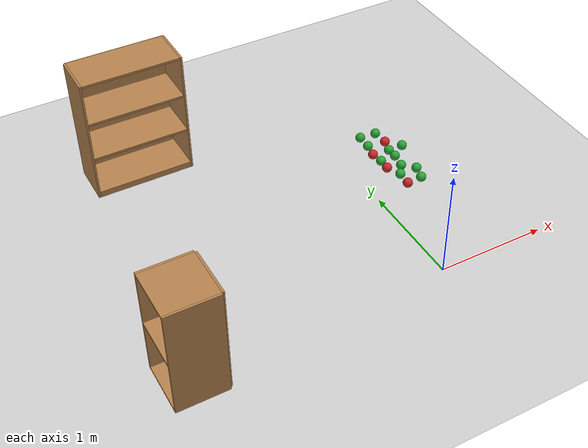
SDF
<sdf version="1.6">
 <world name="default">
  <model name="ground_plane">
   <static>1</static>
   <link name="link">
    <collision name="collision">
     <geometry><plane><normal>0 0 1</normal><size>100 100</size></plane></geometry>
     <surface><friction><ode><mu>100</mu><mu2>50</mu2></ode></friction></surface>
    </collision>
    <visual name="visual">
     <cast_shadows>0</cast_shadows>
     <geometry><plane><normal>0 0 1</normal><size>100 100</size></plane></geometry>
     <material>
      <script><uri>file://media/materials/scripts/gazebo.material</uri><name>Gazebo/Grey</name></script>
     </material>
    </visual>
   </link>
  </model>
  <model name="cabinet">
   <static>1</static>
   <link name="cabinet_bottom_plate">
    <inertial>
     <pose>0 0 -1 0 -0 0</pose>
     <inertia><ixx>2.05</ixx><ixy>0</ixy><ixz>0</ixz><iyy>2.05</iyy><iyz>0</iyz><izz>2.05</izz></inertia>
     <mass>25</mass>
    </inertial>
    <collision name="cabinet_bottom_plate_geom">
     <pose>0 0 0.01 0 -0 0</pose>
     <geometry><box><size>0.45 0.45 0.02</size></box></geometry>
    </collision>
    <visual name="cabinet_bottom_plate_geom_visual">
     <pose>0 0 0.01 0 -0 0</pose>
     <geometry><box><size>0.45 0.45 0.02</size></box></geometry>
     <material>
      <script><uri>file://media/materials/scripts/gazebo.material</uri><name>Gazebo/Wood</name></script>
     </material>
    </visual>
    <collision name="cabinet_bottom_plate_geom_cabinet_back_plate">
     <pose>0.235 0 0.51 0 -0 0</pose>
     <geometry><box><size>0.02 0.45 1.02</size></box></geometry>
    </collision>
    <visual name="cabinet_bottom_plate_geom_cabinet_back_plate_visual">
     <pose>0.235 0 0.51 0 -0 0</pose>
     <geometry><box><size>0.02 0.45 1.02</size></box></geometry>
     <material>
      <script><uri>file://media/materials/scripts/gazebo.material</uri><name>Gazebo/Wood</name></script>
     </material>
    </visual>
    <collision name="cabinet_bottom_plate_geom_cabinet_left_plate">
     <pose>0 0.235 0.51 0 -0 0</pose>
     <geometry><box><size>0.45 0.02 1.02</size></box></geometry>
    </collision>
    <visual name="cabinet_bottom_plate_geom_cabinet_left_plate_visual">
     <pose>0 0.235 0.51 0 -0 0</pose>
     <geometry><box><size>0.45 0.02 1.02</size></box></geometry>
     <material>
      <script><uri>file://media/materials/scripts/gazebo.material</uri><name>Gazebo/Wood</name></script>
     </material>
    </visual>
    <collision name="cabinet_bottom_plate_geom_cabinet_middle_plate">
     <pose>0 0 0.51 0 -0 0</pose>
     <geometry><box><size>0.45 0.45 0.02</size></box></geometry>
    </collision>
    <visual name="cabinet_bottom_plate_geom_cabinet_middle_plate_visual">
     <pose>0 0 0.51 0 -0 0</pose>
     <geometry><box><size>0.45 0.45 0.02</size></box></geometry>
     <material>
      <script><uri>file://media/materials/scripts/gazebo.material</uri><name>Gazebo/Wood</name></script>
     </material>
    </visual>
    <collision name="cabinet_bottom_plate_geom_cabinet_right_plate">
     <pose>0 -0.235 0.51 0 -0 0</pose>
     <geometry><box><size>0.45 0.02 1.02</size></box></geometry>
    </collision>
    <visual name="cabinet_bottom_plate_geom_cabinet_right_plate_visual">
     <pose>0 -0.235 0.51 0 -0 0</pose>
     <geometry><box><size>0.45 0.02 1.02</size></box></geometry>
     <material>
      <script><uri>file://media/materials/scripts/gazebo.material</uri><name>Gazebo/Wood</name></script>
     </material>
    </visual>
    <collision name="cabinet_bottom_plate_geom_cabinet_top_plate">
     <pose>0 0 1.01 0 -0 0</pose>
     <geometry><box><size>0.45 0.45 0.02</size></box></geometry>
    </collision>
    <visual name="cabinet_bottom_plate_geom_cabinet_top_plate_visual">
     <pose>0 0 1.01 0 -0 0</pose>
     <geometry><box><size>0.45 0.45 0.02</size></box></geometry>
     <material>
      <script><uri>file://media/materials/scripts/gazebo.material</uri><name>Gazebo/Wood</name></script>
     </material>
    </visual>
   </link>
   <pose>-2.29685 -0.011015 0 0 -0 0</pose>
  </model>
  <model name="bookshelf">
   <static>1</static>
   <link name="link">
    <inertial><mass>1</mass></inertial>
    <collision name="back">
     <pose>0 0.005 0.6 0 -0 0</pose>
     <geometry><box><size>0.9 0.01 1.2</size></box></geometry>
    </collision>
    <visual name="visual1">
     <pose>0 0.005 0.6 0 -0 0</pose>
     <geometry><box><size>0.9 0.01 1.2</size></box></geometry>
     <material>
      <script><uri>file://media/materials/scripts/gazebo.material</uri><name>Gazebo/Wood</name></script>
     </material>
    </visual>
    <collision name="left_side">
     <pose>0.45 -0.195 0.6 0 -0 0</pose>
     <geometry><box><size>0.02 0.4 1.2</size></box></geometry>
    </collision>
    <visual name="visual2">
     <pose>0.45 -0.195 0.6 0 -0 0</pose>
     <geometry><box><size>0.02 0.4 1.2</size></box></geometry>
     <material>
      <script><uri>file://media/materials/scripts/gazebo.material</uri><name>Gazebo/Wood</name></script>
     </material>
    </visual>
    <collision name="right_side">
     <pose>-0.45 -0.195 0.6 0 -0 0</pose>
     <geometry><box><size>0.02 0.4 1.2</size></box></geometry>
    </collision>
    <visual name="visual3">
     <pose>-0.45 -0.195 0.6 0 -0 0</pose>
     <geometry><box><size>0.02 0.4 1.2</size></box></geometry>
     <material>
      <script><uri>file://media/materials/scripts/gazebo.material</uri><name>Gazebo/Wood</name></script>
     </material>
    </visual>
    <collision name="bottom">
     <pose>0 -0.195 0.03 0 -0 0</pose>
     <geometry><box><size>0.88 0.4 0.06</size></box></geometry>
    </collision>
    <visual name="visual4">
     <pose>0 -0.195 0.03 0 -0 0</pose>
     <geometry><box><size>0.88 0.4 0.06</size></box></geometry>
     <material>
      <script><uri>file://media/materials/scripts/gazebo.material</uri><name>Gazebo/Wood</name></script>
     </material>
    </visual>
    <collision name="top">
     <pose>0 -0.195 1.19 0 -0 0</pose>
     <geometry><box><size>0.88 0.4 0.02</size></box></geometry>
    </collision>
    <visual name="visual5">
     <pose>0 -0.195 1.19 0 -0 0</pose>
     <geometry><box><size>0.88 0.4 0.02</size></box></geometry>
     <material>
      <script><uri>file://media/materials/scripts/gazebo.material</uri><name>Gazebo/Wood</name></script>
     </material>
    </visual>
    <collision name="low_shelf">
     <pose>0 -0.195 0.43 0 -0 0</pose>
     <geometry><box><size>0.88 0.4 0.02</size></box></geometry>
    </collision>
    <visual name="visual6">
     <pose>0 -0.195 0.43 0 -0 0</pose>
     <geometry><box><size>0.88 0.4 0.02</size></box></geometry>
     <material>
      <script><uri>file://media/materials/scripts/gazebo.material</uri><name>Gazebo/Wood</name></script>
     </material>
    </visual>
    <collision name="high_shelf">
     <pose>0 -0.195 0.8 0 -0 0</pose>
     <geometry><box><size>0.88 0.4 0.02</size></box></geometry>
    </collision>
    <visual name="visual7">
     <pose>0 -0.195 0.8 0 -0 0</pose>
     <geometry><box><size>0.88 0.4 0.02</size></box></geometry>
     <material>
      <script><uri>file://media/materials/scripts/gazebo.material</uri><name>Gazebo/Wood</name></script>
     </material>
    </visual>
   </link>
   <pose>-1.70945 2.65382 0 0 -0 0</pose>
  </model>
  <model name="green_apple_clone_2">
   <link name="link">
    <inertial>
     <mass>1</mass>
     <inertia><ixx>0.1</ixx><ixy>0</ixy><ixz>0</ixz><iyy>0.1</iyy><iyz>0</iyz><izz>0.1</izz></inertia>
    </inertial>
    <visual name="visual">
     <geometry><sphere><radius>0.04</radius></sphere></geometry>
     <material>
      <script><name>Gazebo/Green</name><uri>file://media/materials/scripts/gazebo.material</uri></script>
      <shader type="vertex"><normal_map>__default__</normal_map></shader>
      <ambient>0 1 0 1</ambient>
      <diffuse>0.7 0.7 0.7 1</diffuse>
      <specular>0.01 0.01 0.01 1</specular>
      <emissive>0 0 0 1</emissive>
     </material>
    </visual>
    <collision name="collision">
     <geometry><sphere><radius>0.04</radius></sphere></geometry>
     <surface>
      <friction>
       <ode><mu>1</mu><mu2>1</mu2><fdir1>0 0 0</fdir1><slip1>0</slip1><slip2>0</slip2></ode>
       <torsional>
        <coefficient>1</coefficient>
        <patch_radius>0</patch_radius>
        <surface_radius>0</surface_radius>
        <use_patch_radius>1</use_patch_radius>
        <ode><slip>0</slip></ode>
       </torsional>
      </friction>
      <bounce><restitution_coefficient>0</restitution_coefficient><threshold>1e+06</threshold></bounce>
      <contact>
       <collide_without_contact>0</collide_without_contact>
       <collide_without_contact_bitmask>1</collide_without_contact_bitmask>
       <collide_bitmask>1</collide_bitmask>
       <ode>
        <soft_cfm>0</soft_cfm>
        <soft_erp>0.2</soft_erp>
        <kp>1e+13</kp>
        <kd>1</kd>
        <max_vel>0.01</max_vel>
        <min_depth>0</min_depth>
       </ode>
       <bullet>
        <split_impulse>1</split_impulse>
        <split_impulse_penetration_threshold>-0.01</split_impulse_penetration_threshold>
        <soft_cfm>0</soft_cfm>
        <soft_erp>0.2</soft_erp>
        <kp>1e+13</kp>
        <kd>1</kd>
       </bullet>
      </contact>
     </surface>
    </collision>
   </link>
   <static>0</static>
   <pose>-0.233826 0.981757 0.815 0 -0 0</pose>
  </model>
  <model name="green_apple_clone_3">
   <link name="link">
    <inertial>
     <mass>1</mass>
     <inertia><ixx>0.1</ixx><ixy>0</ixy><ixz>0</ixz><iyy>0.1</iyy><iyz>0</iyz><izz>0.1</izz></inertia>
    </inertial>
    <visual name="visual">
     <geometry><sphere><radius>0.04</radius></sphere></geometry>
     <material>
      <script><name>Gazebo/Green</name><uri>file://media/materials/scripts/gazebo.material</uri></script>
      <shader type="vertex"><normal_map>__default__</normal_map></shader>
      <ambient>0 1 0 1</ambient>
      <diffuse>0.7 0.7 0.7 1</diffuse>
      <specular>0.01 0.01 0.01 1</specular>
      <emissive>0 0 0 1</emissive>
     </material>
    </visual>
    <collision name="collision">
     <geometry><sphere><radius>0.04</radius></sphere></geometry>
     <surface>
      <friction>
       <ode><mu>1</mu><mu2>1</mu2><fdir1>0 0 0</fdir1><slip1>0</slip1><slip2>0</slip2></ode>
       <torsional>
        <coefficient>1</coefficient>
        <patch_radius>0</patch_radius>
        <surface_radius>0</surface_radius>
        <use_patch_radius>1</use_patch_radius>
        <ode><slip>0</slip></ode>
       </torsional>
      </friction>
      <bounce><restitution_coefficient>0</restitution_coefficient><threshold>1e+06</threshold></bounce>
      <contact>
       <collide_without_contact>0</collide_without_contact>
       <collide_without_contact_bitmask>1</collide_without_contact_bitmask>
       <collide_bitmask>1</collide_bitmask>
       <ode>
        <soft_cfm>0</soft_cfm>
        <soft_erp>0.2</soft_erp>
        <kp>1e+13</kp>
        <kd>1</kd>
        <max_vel>0.01</max_vel>
        <min_depth>0</min_depth>
       </ode>
       <bullet>
        <split_impulse>1</split_impulse>
        <split_impulse_penetration_threshold>-0.01</split_impulse_penetration_threshold>
        <soft_cfm>0</soft_cfm>
        <soft_erp>0.2</soft_erp>
        <kp>1e+13</kp>
        <kd>1</kd>
       </bullet>
      </contact>
     </surface>
    </collision>
   </link>
   <static>0</static>
   <pose>-0.094552 0.971199 0.815 0 -0 0</pose>
  </model>
  <model name="red_apple_clone_clone">
   <link name="link">
    <inertial>
     <mass>1</mass>
     <inertia><ixx>0.1</ixx><ixy>0</ixy><ixz>0</ixz><iyy>0.1</iyy><iyz>0</iyz><izz>0.1</izz></inertia>
    </inertial>
    <visual name="visual">
     <geometry><sphere><radius>0.04</radius></sphere></geometry>
     <material>
      <script><name>Gazebo/Red</name><uri>file://media/materials/scripts/gazebo.material</uri></script>
      <shader type="vertex"><normal_map>__default__</normal_map></shader>
      <ambient>1 0 0 1</ambient>
      <diffuse>0.7 0.7 0.7 1</diffuse>
      <specular>0.01 0.01 0.01 1</specular>
      <emissive>0 0 0 1</emissive>
     </material>
    </visual>
    <collision name="collision">
     <geometry><sphere><radius>0.04</radius></sphere></geometry>
     <surface>
      <friction>
       <ode><mu>1</mu><mu2>1</mu2><fdir1>0 0 0</fdir1><slip1>0</slip1><slip2>0</slip2></ode>
       <torsional>
        <coefficient>1</coefficient>
        <patch_radius>0</patch_radius>
        <surface_radius>0</surface_radius>
        <use_patch_radius>1</use_patch_radius>
        <ode><slip>0</slip></ode>
       </torsional>
      </friction>
      <bounce><restitution_coefficient>0</restitution_coefficient><threshold>1e+06</threshold></bounce>
      <contact>
       <collide_without_contact>0</collide_without_contact>
       <collide_without_contact_bitmask>1</collide_without_contact_bitmask>
       <collide_bitmask>1</collide_bitmask>
       <ode>
        <soft_cfm>0</soft_cfm>
        <soft_erp>0.2</soft_erp>
        <kp>1e+13</kp>
        <kd>1</kd>
        <max_vel>0.01</max_vel>
        <min_depth>0</min_depth>
       </ode>
       <bullet>
        <split_impulse>1</split_impulse>
        <split_impulse_penetration_threshold>-0.01</split_impulse_penetration_threshold>
        <soft_cfm>0</soft_cfm>
        <soft_erp>0.2</soft_erp>
        <kp>1e+13</kp>
        <kd>1</kd>
       </bullet>
      </contact>
     </surface>
    </collision>
   </link>
   <static>0</static>
   <pose>-0.083701 0.837051 0.815 0 -0 0</pose>
  </model>
  <model name="red_apple_clone_clone_4">
   <link name="link">
    <inertial>
     <mass>1</mass>
     <inertia><ixx>0.1</ixx><ixy>0</ixy><ixz>0</ixz><iyy>0.1</iyy><iyz>0</iyz><izz>0.1</izz></inertia>
    </inertial>
    <visual name="visual">
     <geometry><sphere><radius>0.04</radius></sphere></geometry>
     <material>
      <script><name>Gazebo/Red</name><uri>file://media/materials/scripts/gazebo.material</uri></script>
      <shader type="vertex"><normal_map>__default__</normal_map></shader>
      <ambient>1 0 0 1</ambient>
      <diffuse>0.7 0.7 0.7 1</diffuse>
      <specular>0.01 0.01 0.01 1</specular>
      <emissive>0 0 0 1</emissive>
     </material>
    </visual>
    <collision name="collision">
     <geometry><sphere><radius>0.04</radius></sphere></geometry>
     <surface>
      <friction>
       <ode><mu>1</mu><mu2>1</mu2><fdir1>0 0 0</fdir1><slip1>0</slip1><slip2>0</slip2></ode>
       <torsional>
        <coefficient>1</coefficient>
        <patch_radius>0</patch_radius>
        <surface_radius>0</surface_radius>
        <use_patch_radius>1</use_patch_radius>
        <ode><slip>0</slip></ode>
       </torsional>
      </friction>
      <bounce><restitution_coefficient>0</restitution_coefficient><threshold>1e+06</threshold></bounce>
      <contact>
       <collide_without_contact>0</collide_without_contact>
       <collide_without_contact_bitmask>1</collide_without_contact_bitmask>
       <collide_bitmask>1</collide_bitmask>
       <ode>
        <soft_cfm>0</soft_cfm>
        <soft_erp>0.2</soft_erp>
        <kp>1e+13</kp>
        <kd>1</kd>
        <max_vel>0.01</max_vel>
        <min_depth>0</min_depth>
       </ode>
       <bullet>
        <split_impulse>1</split_impulse>
        <split_impulse_penetration_threshold>-0.01</split_impulse_penetration_threshold>
        <soft_cfm>0</soft_cfm>
        <soft_erp>0.2</soft_erp>
        <kp>1e+13</kp>
        <kd>1</kd>
       </bullet>
      </contact>
     </surface>
    </collision>
   </link>
   <static>0</static>
   <pose>-0.248731 0.542718 0.815 0 -0 0</pose>
  </model>
  <model name="red_apple_clone_clone_5">
   <link name="link">
    <inertial>
     <mass>1</mass>
     <inertia><ixx>0.1</ixx><ixy>0</ixy><ixz>0</ixz><iyy>0.1</iyy><iyz>0</iyz><izz>0.1</izz></inertia>
    </inertial>
    <visual name="visual">
     <geometry><sphere><radius>0.04</radius></sphere></geometry>
     <material>
      <script><name>Gazebo/Red</name><uri>file://media/materials/scripts/gazebo.material</uri></script>
      <shader type="vertex"><normal_map>__default__</normal_map></shader>
      <ambient>1 0 0 1</ambient>
      <diffuse>0.7 0.7 0.7 1</diffuse>
      <specular>0.01 0.01 0.01 1</specular>
      <emissive>0 0 0 1</emissive>
     </material>
    </visual>
    <collision name="collision">
     <geometry><sphere><radius>0.04</radius></sphere></geometry>
     <surface>
      <friction>
       <ode><mu>1</mu><mu2>1</mu2><fdir1>0 0 0</fdir1><slip1>0</slip1><slip2>0</slip2></ode>
       <torsional>
        <coefficient>1</coefficient>
        <patch_radius>0</patch_radius>
        <surface_radius>0</surface_radius>
        <use_patch_radius>1</use_patch_radius>
        <ode><slip>0</slip></ode>
       </torsional>
      </friction>
      <bounce><restitution_coefficient>0</restitution_coefficient><threshold>1e+06</threshold></bounce>
      <contact>
       <collide_without_contact>0</collide_without_contact>
       <collide_without_contact_bitmask>1</collide_without_contact_bitmask>
       <collide_bitmask>1</collide_bitmask>
       <ode>
        <soft_cfm>0</soft_cfm>
        <soft_erp>0.2</soft_erp>
        <kp>1e+13</kp>
        <kd>1</kd>
        <max_vel>0.01</max_vel>
        <min_depth>0</min_depth>
       </ode>
       <bullet>
        <split_impulse>1</split_impulse>
        <split_impulse_penetration_threshold>-0.01</split_impulse_penetration_threshold>
        <soft_cfm>0</soft_cfm>
        <soft_erp>0.2</soft_erp>
        <kp>1e+13</kp>
        <kd>1</kd>
       </bullet>
      </contact>
     </surface>
    </collision>
   </link>
   <static>0</static>
   <pose>-0.258848 0.740414 0.815 0 -0 0</pose>
  </model>
  <model name="red_apple_clone_clone_6">
   <link name="link">
    <inertial>
     <mass>1</mass>
     <inertia><ixx>0.1</ixx><ixy>0</ixy><ixz>0</ixz><iyy>0.1</iyy><iyz>0</iyz><izz>0.1</izz></inertia>
    </inertial>
    <visual name="visual">
     <geometry><sphere><radius>0.04</radius></sphere></geometry>
     <material>
      <script><name>Gazebo/Red</name><uri>file://media/materials/scripts/gazebo.material</uri></script>
      <shader type="vertex"><normal_map>__default__</normal_map></shader>
      <ambient>1 0 0 1</ambient>
      <diffuse>0.7 0.7 0.7 1</diffuse>
      <specular>0.01 0.01 0.01 1</specular>
      <emissive>0 0 0 1</emissive>
     </material>
    </visual>
    <collision name="collision">
     <geometry><sphere><radius>0.04</radius></sphere></geometry>
     <surface>
      <friction>
       <ode><mu>1</mu><mu2>1</mu2><fdir1>0 0 0</fdir1><slip1>0</slip1><slip2>0</slip2></ode>
       <torsional>
        <coefficient>1</coefficient>
        <patch_radius>0</patch_radius>
        <surface_radius>0</surface_radius>
        <use_patch_radius>1</use_patch_radius>
        <ode><slip>0</slip></ode>
       </torsional>
      </friction>
      <bounce><restitution_coefficient>0</restitution_coefficient><threshold>1e+06</threshold></bounce>
      <contact>
       <collide_without_contact>0</collide_without_contact>
       <collide_without_contact_bitmask>1</collide_without_contact_bitmask>
       <collide_bitmask>1</collide_bitmask>
       <ode>
        <soft_cfm>0</soft_cfm>
        <soft_erp>0.2</soft_erp>
        <kp>1e+13</kp>
        <kd>1</kd>
        <max_vel>0.01</max_vel>
        <min_depth>0</min_depth>
       </ode>
       <bullet>
        <split_impulse>1</split_impulse>
        <split_impulse_penetration_threshold>-0.01</split_impulse_penetration_threshold>
        <soft_cfm>0</soft_cfm>
        <soft_erp>0.2</soft_erp>
        <kp>1e+13</kp>
        <kd>1</kd>
       </bullet>
      </contact>
     </surface>
    </collision>
   </link>
   <static>0</static>
   <pose>-0.205624 0.304906 0.815 0 -0 0</pose>
  </model>
  <model name="green_apple_clone_1_clone">
   <link name="link">
    <inertial>
     <mass>1</mass>
     <inertia><ixx>0.1</ixx><ixy>0</ixy><ixz>0</ixz><iyy>0.1</iyy><iyz>0</iyz><izz>0.1</izz></inertia>
    </inertial>
    <visual name="visual">
     <geometry><sphere><radius>0.04</radius></sphere></geometry>
     <material>
      <script><name>Gazebo/Green</name><uri>file://media/materials/scripts/gazebo.material</uri></script>
      <shader type="vertex"><normal_map>__default__</normal_map></shader>
      <ambient>0 1 0 1</ambient>
      <diffuse>0.7 0.7 0.7 1</diffuse>
      <specular>0.01 0.01 0.01 1</specular>
      <emissive>0 0 0 1</emissive>
     </material>
    </visual>
    <collision name="collision">
     <geometry><sphere><radius>0.04</radius></sphere></geometry>
     <surface>
      <friction>
       <ode><mu>1</mu><mu2>1</mu2><fdir1>0 0 0</fdir1><slip1>0</slip1><slip2>0</slip2></ode>
       <torsional>
        <coefficient>1</coefficient>
        <patch_radius>0</patch_radius>
        <surface_radius>0</surface_radius>
        <use_patch_radius>1</use_patch_radius>
        <ode><slip>0</slip></ode>
       </torsional>
      </friction>
      <bounce><restitution_coefficient>0</restitution_coefficient><threshold>1e+06</threshold></bounce>
      <contact>
       <collide_without_contact>0</collide_without_contact>
       <collide_without_contact_bitmask>1</collide_without_contact_bitmask>
       <collide_bitmask>1</collide_bitmask>
       <ode>
        <soft_cfm>0</soft_cfm>
        <soft_erp>0.2</soft_erp>
        <kp>1e+13</kp>
        <kd>1</kd>
        <max_vel>0.01</max_vel>
        <min_depth>0</min_depth>
       </ode>
       <bullet>
        <split_impulse>1</split_impulse>
        <split_impulse_penetration_threshold>-0.01</split_impulse_penetration_threshold>
        <soft_cfm>0</soft_cfm>
        <soft_erp>0.2</soft_erp>
        <kp>1e+13</kp>
        <kd>1</kd>
       </bullet>
      </contact>
     </surface>
    </collision>
   </link>
   <static>0</static>
   <pose>-0.236928 0.855183 0.815 0 -0 0</pose>
  </model>
  <model name="green_apple_clone_1_clone_3">
   <link name="link">
    <inertial>
     <mass>1</mass>
     <inertia><ixx>0.1</ixx><ixy>0</ixy><ixz>0</ixz><iyy>0.1</iyy><iyz>0</iyz><izz>0.1</izz></inertia>
    </inertial>
    <visual name="visual">
     <geometry><sphere><radius>0.04</radius></sphere></geometry>
     <material>
      <script><name>Gazebo/Green</name><uri>file://media/materials/scripts/gazebo.material</uri></script>
      <shader type="vertex"><normal_map>__default__</normal_map></shader>
      <ambient>0 1 0 1</ambient>
      <diffuse>0.7 0.7 0.7 1</diffuse>
      <specular>0.01 0.01 0.01 1</specular>
      <emissive>0 0 0 1</emissive>
     </material>
    </visual>
    <collision name="collision">
     <geometry><sphere><radius>0.04</radius></sphere></geometry>
     <surface>
      <friction>
       <ode><mu>1</mu><mu2>1</mu2><fdir1>0 0 0</fdir1><slip1>0</slip1><slip2>0</slip2></ode>
       <torsional>
        <coefficient>1</coefficient>
        <patch_radius>0</patch_radius>
        <surface_radius>0</surface_radius>
        <use_patch_radius>1</use_patch_radius>
        <ode><slip>0</slip></ode>
       </torsional>
      </friction>
      <bounce><restitution_coefficient>0</restitution_coefficient><threshold>1e+06</threshold></bounce>
      <contact>
       <collide_without_contact>0</collide_without_contact>
       <collide_without_contact_bitmask>1</collide_without_contact_bitmask>
       <collide_bitmask>1</collide_bitmask>
       <ode>
        <soft_cfm>0</soft_cfm>
        <soft_erp>0.2</soft_erp>
        <kp>1e+13</kp>
        <kd>1</kd>
        <max_vel>0.01</max_vel>
        <min_depth>0</min_depth>
       </ode>
       <bullet>
        <split_impulse>1</split_impulse>
        <split_impulse_penetration_threshold>-0.01</split_impulse_penetration_threshold>
        <soft_cfm>0</soft_cfm>
        <soft_erp>0.2</soft_erp>
        <kp>1e+13</kp>
        <kd>1</kd>
       </bullet>
      </contact>
     </surface>
    </collision>
   </link>
   <static>0</static>
   <pose>-0.114215 0.728952 0.815 0 -0 0</pose>
  </model>
  <model name="green_apple_clone_1_clone_4">
   <link name="link">
    <inertial>
     <mass>1</mass>
     <inertia><ixx>0.1</ixx><ixy>0</ixy><ixz>0</ixz><iyy>0.1</iyy><iyz>0</iyz><izz>0.1</izz></inertia>
    </inertial>
    <visual name="visual">
     <geometry><sphere><radius>0.04</radius></sphere></geometry>
     <material>
      <script><name>Gazebo/Green</name><uri>file://media/materials/scripts/gazebo.material</uri></script>
      <shader type="vertex"><normal_map>__default__</normal_map></shader>
      <ambient>0 1 0 1</ambient>
      <diffuse>0.7 0.7 0.7 1</diffuse>
      <specular>0.01 0.01 0.01 1</specular>
      <emissive>0 0 0 1</emissive>
     </material>
    </visual>
    <collision name="collision">
     <geometry><sphere><radius>0.04</radius></sphere></geometry>
     <surface>
      <friction>
       <ode><mu>1</mu><mu2>1</mu2><fdir1>0 0 0</fdir1><slip1>0</slip1><slip2>0</slip2></ode>
       <torsional>
        <coefficient>1</coefficient>
        <patch_radius>0</patch_radius>
        <surface_radius>0</surface_radius>
        <use_patch_radius>1</use_patch_radius>
        <ode><slip>0</slip></ode>
       </torsional>
      </friction>
      <bounce><restitution_coefficient>0</restitution_coefficient><threshold>1e+06</threshold></bounce>
      <contact>
       <collide_without_contact>0</collide_without_contact>
       <collide_without_contact_bitmask>1</collide_without_contact_bitmask>
       <collide_bitmask>1</collide_bitmask>
       <ode>
        <soft_cfm>0</soft_cfm>
        <soft_erp>0.2</soft_erp>
        <kp>1e+13</kp>
        <kd>1</kd>
        <max_vel>0.01</max_vel>
        <min_depth>0</min_depth>
       </ode>
       <bullet>
        <split_impulse>1</split_impulse>
        <split_impulse_penetration_threshold>-0.01</split_impulse_penetration_threshold>
        <soft_cfm>0</soft_cfm>
        <soft_erp>0.2</soft_erp>
        <kp>1e+13</kp>
        <kd>1</kd>
       </bullet>
      </contact>
     </surface>
    </collision>
   </link>
   <static>0</static>
   <pose>0.013137 0.728167 0.815 0 -0 0</pose>
  </model>
  <model name="green_apple_clone_1_clone_6">
   <link name="link">
    <inertial>
     <mass>1</mass>
     <inertia><ixx>0.1</ixx><ixy>0</ixy><ixz>0</ixz><iyy>0.1</iyy><iyz>0</iyz><izz>0.1</izz></inertia>
    </inertial>
    <visual name="visual">
     <geometry><sphere><radius>0.04</radius></sphere></geometry>
     <material>
      <script><name>Gazebo/Green</name><uri>file://media/materials/scripts/gazebo.material</uri></script>
      <shader type="vertex"><normal_map>__default__</normal_map></shader>
      <ambient>0 1 0 1</ambient>
      <diffuse>0.7 0.7 0.7 1</diffuse>
      <specular>0.01 0.01 0.01 1</specular>
      <emissive>0 0 0 1</emissive>
     </material>
    </visual>
    <collision name="collision">
     <geometry><sphere><radius>0.04</radius></sphere></geometry>
     <surface>
      <friction>
       <ode><mu>1</mu><mu2>1</mu2><fdir1>0 0 0</fdir1><slip1>0</slip1><slip2>0</slip2></ode>
       <torsional>
        <coefficient>1</coefficient>
        <patch_radius>0</patch_radius>
        <surface_radius>0</surface_radius>
        <use_patch_radius>1</use_patch_radius>
        <ode><slip>0</slip></ode>
       </torsional>
      </friction>
      <bounce><restitution_coefficient>0</restitution_coefficient><threshold>1e+06</threshold></bounce>
      <contact>
       <collide_without_contact>0</collide_without_contact>
       <collide_without_contact_bitmask>1</collide_without_contact_bitmask>
       <collide_bitmask>1</collide_bitmask>
       <ode>
        <soft_cfm>0</soft_cfm>
        <soft_erp>0.2</soft_erp>
        <kp>1e+13</kp>
        <kd>1</kd>
        <max_vel>0.01</max_vel>
        <min_depth>0</min_depth>
       </ode>
       <bullet>
        <split_impulse>1</split_impulse>
        <split_impulse_penetration_threshold>-0.01</split_impulse_penetration_threshold>
        <soft_cfm>0</soft_cfm>
        <soft_erp>0.2</soft_erp>
        <kp>1e+13</kp>
        <kd>1</kd>
       </bullet>
      </contact>
     </surface>
    </collision>
   </link>
   <static>0</static>
   <pose>-0.245182 0.639711 0.815 0 -0 0</pose>
  </model>
  <model name="green_apple_clone_1_clone_7">
   <link name="link">
    <inertial>
     <mass>1</mass>
     <inertia><ixx>0.1</ixx><ixy>0</ixy><ixz>0</ixz><iyy>0.1</iyy><iyz>0</iyz><izz>0.1</izz></inertia>
    </inertial>
    <visual name="visual">
     <geometry><sphere><radius>0.04</radius></sphere></geometry>
     <material>
      <script><name>Gazebo/Green</name><uri>file://media/materials/scripts/gazebo.material</uri></script>
      <shader type="vertex"><normal_map>__default__</normal_map></shader>
      <ambient>0 1 0 1</ambient>
      <diffuse>0.7 0.7 0.7 1</diffuse>
      <specular>0.01 0.01 0.01 1</specular>
      <emissive>0 0 0 1</emissive>
     </material>
    </visual>
    <collision name="collision">
     <geometry><sphere><radius>0.04</radius></sphere></geometry>
     <surface>
      <friction>
       <ode><mu>1</mu><mu2>1</mu2><fdir1>0 0 0</fdir1><slip1>0</slip1><slip2>0</slip2></ode>
       <torsional>
        <coefficient>1</coefficient>
        <patch_radius>0</patch_radius>
        <surface_radius>0</surface_radius>
        <use_patch_radius>1</use_patch_radius>
        <ode><slip>0</slip></ode>
       </torsional>
      </friction>
      <bounce><restitution_coefficient>0</restitution_coefficient><threshold>1e+06</threshold></bounce>
      <contact>
       <collide_without_contact>0</collide_without_contact>
       <collide_without_contact_bitmask>1</collide_without_contact_bitmask>
       <collide_bitmask>1</collide_bitmask>
       <ode>
        <soft_cfm>0</soft_cfm>
        <soft_erp>0.2</soft_erp>
        <kp>1e+13</kp>
        <kd>1</kd>
        <max_vel>0.01</max_vel>
        <min_depth>0</min_depth>
       </ode>
       <bullet>
        <split_impulse>1</split_impulse>
        <split_impulse_penetration_threshold>-0.01</split_impulse_penetration_threshold>
        <soft_cfm>0</soft_cfm>
        <soft_erp>0.2</soft_erp>
        <kp>1e+13</kp>
        <kd>1</kd>
       </bullet>
      </contact>
     </surface>
    </collision>
   </link>
   <static>0</static>
   <pose>-0.110804 0.641157 0.815 0 -0 0</pose>
  </model>
  <model name="green_apple_clone_1_clone_12">
   <link name="link">
    <inertial>
     <mass>1</mass>
     <inertia><ixx>0.1</ixx><ixy>0</ixy><ixz>0</ixz><iyy>0.1</iyy><iyz>0</iyz><izz>0.1</izz></inertia>
    </inertial>
    <visual name="visual">
     <geometry><sphere><radius>0.04</radius></sphere></geometry>
     <material>
      <script><name>Gazebo/Green</name><uri>file://media/materials/scripts/gazebo.material</uri></script>
      <shader type="vertex"><normal_map>__default__</normal_map></shader>
      <ambient>0 1 0 1</ambient>
      <diffuse>0.7 0.7 0.7 1</diffuse>
      <specular>0.01 0.01 0.01 1</specular>
      <emissive>0 0 0 1</emissive>
     </material>
    </visual>
    <collision name="collision">
     <geometry><sphere><radius>0.04</radius></sphere></geometry>
     <surface>
      <friction>
       <ode><mu>1</mu><mu2>1</mu2><fdir1>0 0 0</fdir1><slip1>0</slip1><slip2>0</slip2></ode>
       <torsional>
        <coefficient>1</coefficient>
        <patch_radius>0</patch_radius>
        <surface_radius>0</surface_radius>
        <use_patch_radius>1</use_patch_radius>
        <ode><slip>0</slip></ode>
       </torsional>
      </friction>
      <bounce><restitution_coefficient>0</restitution_coefficient><threshold>1e+06</threshold></bounce>
      <contact>
       <collide_without_contact>0</collide_without_contact>
       <collide_without_contact_bitmask>1</collide_without_contact_bitmask>
       <collide_bitmask>1</collide_bitmask>
       <ode>
        <soft_cfm>0</soft_cfm>
        <soft_erp>0.2</soft_erp>
        <kp>1e+13</kp>
        <kd>1</kd>
        <max_vel>0.01</max_vel>
        <min_depth>0</min_depth>
       </ode>
       <bullet>
        <split_impulse>1</split_impulse>
        <split_impulse_penetration_threshold>-0.01</split_impulse_penetration_threshold>
        <soft_cfm>0</soft_cfm>
        <soft_erp>0.2</soft_erp>
        <kp>1e+13</kp>
        <kd>1</kd>
       </bullet>
      </contact>
     </surface>
    </collision>
   </link>
   <static>0</static>
   <pose>-0.131446 0.516552 0.815 0 -0 0</pose>
  </model>
  <model name="green_apple_clone_1_clone_18">
   <link name="link">
    <inertial>
     <mass>1</mass>
     <inertia><ixx>0.1</ixx><ixy>0</ixy><ixz>0</ixz><iyy>0.1</iyy><iyz>0</iyz><izz>0.1</izz></inertia>
    </inertial>
    <visual name="visual">
     <geometry><sphere><radius>0.04</radius></sphere></geometry>
     <material>
      <script><name>Gazebo/Green</name><uri>file://media/materials/scripts/gazebo.material</uri></script>
      <shader type="vertex"><normal_map>__default__</normal_map></shader>
      <ambient>0 1 0 1</ambient>
      <diffuse>0.7 0.7 0.7 1</diffuse>
      <specular>0.01 0.01 0.01 1</specular>
      <emissive>0 0 0 1</emissive>
     </material>
    </visual>
    <collision name="collision">
     <geometry><sphere><radius>0.04</radius></sphere></geometry>
     <surface>
      <friction>
       <ode><mu>1</mu><mu2>1</mu2><fdir1>0 0 0</fdir1><slip1>0</slip1><slip2>0</slip2></ode>
       <torsional>
        <coefficient>1</coefficient>
        <patch_radius>0</patch_radius>
        <surface_radius>0</surface_radius>
        <use_patch_radius>1</use_patch_radius>
        <ode><slip>0</slip></ode>
       </torsional>
      </friction>
      <bounce><restitution_coefficient>0</restitution_coefficient><threshold>1e+06</threshold></bounce>
      <contact>
       <collide_without_contact>0</collide_without_contact>
       <collide_without_contact_bitmask>1</collide_without_contact_bitmask>
       <collide_bitmask>1</collide_bitmask>
       <ode>
        <soft_cfm>0</soft_cfm>
        <soft_erp>0.2</soft_erp>
        <kp>1e+13</kp>
        <kd>1</kd>
        <max_vel>0.01</max_vel>
        <min_depth>0</min_depth>
       </ode>
       <bullet>
        <split_impulse>1</split_impulse>
        <split_impulse_penetration_threshold>-0.01</split_impulse_penetration_threshold>
        <soft_cfm>0</soft_cfm>
        <soft_erp>0.2</soft_erp>
        <kp>1e+13</kp>
        <kd>1</kd>
       </bullet>
      </contact>
     </surface>
    </collision>
   </link>
   <static>0</static>
   <pose>-0.042803 0.427073 0.815 0 -0 0</pose>
  </model>
  <model name="green_apple_clone_1_clone_19">
   <link name="link">
    <inertial>
     <mass>1</mass>
     <inertia><ixx>0.1</ixx><ixy>0</ixy><ixz>0</ixz><iyy>0.1</iyy><iyz>0</iyz><izz>0.1</izz></inertia>
    </inertial>
    <visual name="visual">
     <geometry><sphere><radius>0.04</radius></sphere></geometry>
     <material>
      <script><name>Gazebo/Green</name><uri>file://media/materials/scripts/gazebo.material</uri></script>
      <shader type="vertex"><normal_map>__default__</normal_map></shader>
      <ambient>0 1 0 1</ambient>
      <diffuse>0.7 0.7 0.7 1</diffuse>
      <specular>0.01 0.01 0.01 1</specular>
      <emissive>0 0 0 1</emissive>
     </material>
    </visual>
    <collision name="collision">
     <geometry><sphere><radius>0.04</radius></sphere></geometry>
     <surface>
      <friction>
       <ode><mu>1</mu><mu2>1</mu2><fdir1>0 0 0</fdir1><slip1>0</slip1><slip2>0</slip2></ode>
       <torsional>
        <coefficient>1</coefficient>
        <patch_radius>0</patch_radius>
        <surface_radius>0</surface_radius>
        <use_patch_radius>1</use_patch_radius>
        <ode><slip>0</slip></ode>
       </torsional>
      </friction>
      <bounce><restitution_coefficient>0</restitution_coefficient><threshold>1e+06</threshold></bounce>
      <contact>
       <collide_without_contact>0</collide_without_contact>
       <collide_without_contact_bitmask>1</collide_without_contact_bitmask>
       <collide_bitmask>1</collide_bitmask>
       <ode>
        <soft_cfm>0</soft_cfm>
        <soft_erp>0.2</soft_erp>
        <kp>1e+13</kp>
        <kd>1</kd>
        <max_vel>0.01</max_vel>
        <min_depth>0</min_depth>
       </ode>
       <bullet>
        <split_impulse>1</split_impulse>
        <split_impulse_penetration_threshold>-0.01</split_impulse_penetration_threshold>
        <soft_cfm>0</soft_cfm>
        <soft_erp>0.2</soft_erp>
        <kp>1e+13</kp>
        <kd>1</kd>
       </bullet>
      </contact>
     </surface>
    </collision>
   </link>
   <static>0</static>
   <pose>-0.197512 0.425295 0.815 0 -0 0</pose>
  </model>
  <model name="green_apple_clone_1_clone_20">
   <link name="link">
    <inertial>
     <mass>1</mass>
     <inertia><ixx>0.1</ixx><ixy>0</ixy><ixz>0</ixz><iyy>0.1</iyy><iyz>0</iyz><izz>0.1</izz></inertia>
    </inertial>
    <visual name="visual">
     <geometry><sphere><radius>0.04</radius></sphere></geometry>
     <material>
      <script><name>Gazebo/Green</name><uri>file://media/materials/scripts/gazebo.material</uri></script>
      <shader type="vertex"><normal_map>__default__</normal_map></shader>
      <ambient>0 1 0 1</ambient>
      <diffuse>0.7 0.7 0.7 1</diffuse>
      <specular>0.01 0.01 0.01 1</specular>
      <emissive>0 0 0 1</emissive>
     </material>
    </visual>
    <collision name="collision">
     <geometry><sphere><radius>0.04</radius></sphere></geometry>
     <surface>
      <friction>
       <ode><mu>1</mu><mu2>1</mu2><fdir1>0 0 0</fdir1><slip1>0</slip1><slip2>0</slip2></ode>
       <torsional>
        <coefficient>1</coefficient>
        <patch_radius>0</patch_radius>
        <surface_radius>0</surface_radius>
        <use_patch_radius>1</use_patch_radius>
        <ode><slip>0</slip></ode>
       </torsional>
      </friction>
      <bounce><restitution_coefficient>0</restitution_coefficient><threshold>1e+06</threshold></bounce>
      <contact>
       <collide_without_contact>0</collide_without_contact>
       <collide_without_contact_bitmask>1</collide_without_contact_bitmask>
       <collide_bitmask>1</collide_bitmask>
       <ode>
        <soft_cfm>0</soft_cfm>
        <soft_erp>0.2</soft_erp>
        <kp>1e+13</kp>
        <kd>1</kd>
        <max_vel>0.01</max_vel>
        <min_depth>0</min_depth>
       </ode>
       <bullet>
        <split_impulse>1</split_impulse>
        <split_impulse_penetration_threshold>-0.01</split_impulse_penetration_threshold>
        <soft_cfm>0</soft_cfm>
        <soft_erp>0.2</soft_erp>
        <kp>1e+13</kp>
        <kd>1</kd>
       </bullet>
      </contact>
     </surface>
    </collision>
   </link>
   <static>0</static>
   <pose>-0.073375 0.313504 0.815 0 -0 0</pose>
  </model>
 </world>
</sdf>
